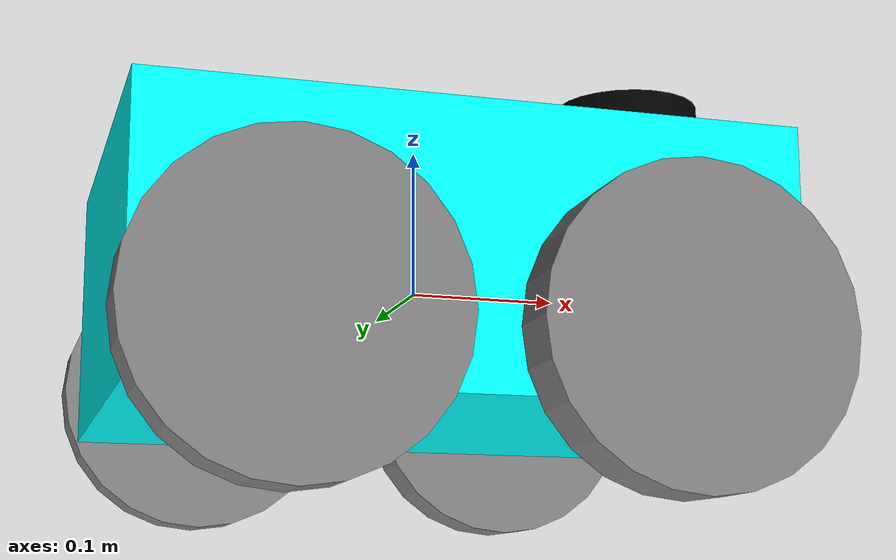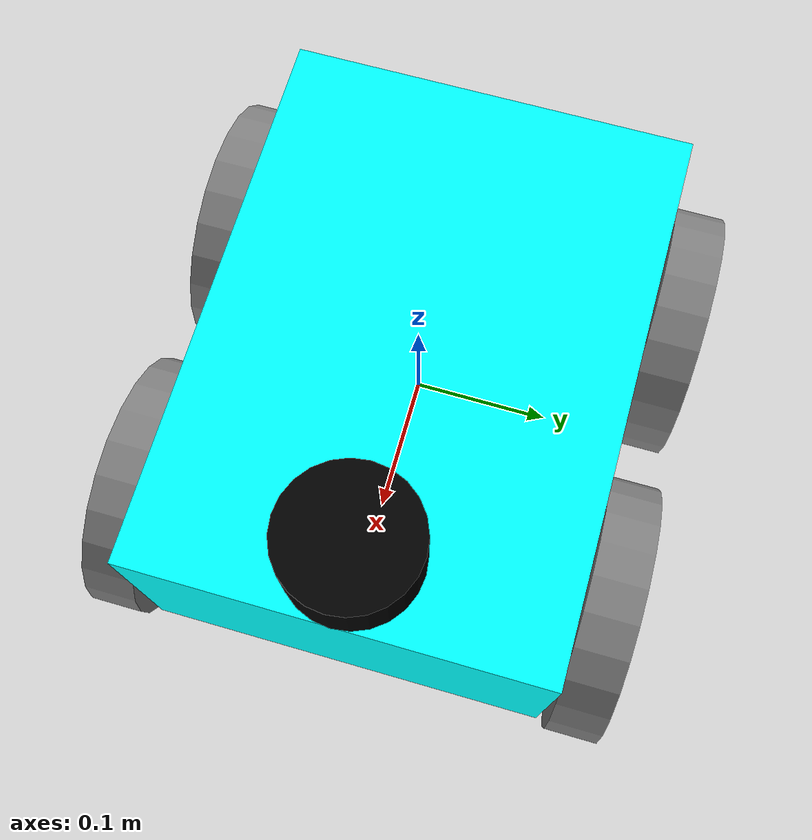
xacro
<?xml version="1.0"?>
<robot name="ws1_bot" xmlns:xacro="http://ros.org/wiki/xacro">

  <xacro:property name="base_width" value="0.31"/>
  <xacro:property name="base_length" value="0.42"/>
  <xacro:property name="base_height" value="0.18"/>

  <xacro:property name="wheel_radius" value="0.10"/>
  <xacro:property name="wheel_width" value="0.04"/>
  <xacro:property name="wheel_ygap" value="0.025"/>
  <xacro:property name="wheel_zoff" value="0.05"/>
  <xacro:property name="wheel_xoff" value="0.12"/>

  <xacro:macro name="box_inertia" params="m w h d">
    <inertial>
      <origin xyz="0 0 0" rpy="${pi/2} 0 ${pi/2}"/>
      <mass value="${m}"/>
      <inertia ixx="${(m/12) * (h*h + d*d)}" ixy="0.0" ixz="0.0" iyy="${(m/12) * (w*w + d*d)}" iyz="0.0" izz="${(m/12) * (w*w + h*h)}"/>
    </inertial>
  </xacro:macro>

  <xacro:macro name="cylinder_inertia" params="m r h">
    <inertial>
      <origin xyz="0 0 0" rpy="${pi/2} 0 0" />
      <mass value="${m}"/>
      <inertia ixx="${(m/12) * (3*r*r + h*h)}" ixy = "0" ixz = "0" iyy="${(m/12) * (3*r*r + h*h)}" iyz = "0" izz="${(m/2) * (r*r)}"/>
    </inertial>
  </xacro:macro>

  <link name="base_link">
    <visual>
      <geometry><box size="${base_length} ${base_width} ${base_height}"/></geometry>
      <material name="Cyan"><color rgba="0 1.0 1.0 1.0"/></material>
    </visual>
    <collision>
      <geometry><box size="${base_length} ${base_width} ${base_height}"/></geometry>
    </collision>
    <xacro:box_inertia m="15" w="${base_width}" d="${base_length}" h="${base_height}"/>
  </link>

  <link name="base_footprint"/>
  <joint name="base_joint" type="fixed">
    <parent link="base_link"/>
    <child link="base_footprint"/>
    <origin xyz="0.0 0.0 ${-(wheel_radius+wheel_zoff)}" rpy="0 0 0"/>
  </joint>

  <xacro:macro name="wheel" params="prefix x_reflect y_reflect">
    <link name="${prefix}_link">
      <visual>
        <origin xyz="0 0 0" rpy="${pi/2} 0 0"/>
        <geometry><cylinder radius="${wheel_radius}" length="${wheel_width}"/></geometry>
        <material name="Gray"><color rgba="0.5 0.5 0.5 1.0"/></material>
      </visual>
      <collision>
        <origin xyz="0 0 0" rpy="${pi/2} 0 0"/>
        <geometry><cylinder radius="${wheel_radius}" length="${wheel_width}"/></geometry>
      </collision>
      <xacro:cylinder_inertia m="0.5" r="${wheel_radius}" h="${wheel_width}"/>
    </link>

    <joint name="${prefix}_joint" type="continuous">
      <parent link="base_link"/>
      <child link="${prefix}_link"/>
      <origin xyz="${x_reflect*wheel_xoff} ${y_reflect*(base_width/2+wheel_ygap)} ${-wheel_zoff}" rpy="0 0 0"/>
      <axis xyz="0 1 0"/>
    </joint>
  </xacro:macro>

  <xacro:wheel prefix="front_left"  x_reflect="1"  y_reflect="1" />
  <xacro:wheel prefix="front_right" x_reflect="1"  y_reflect="-1" />
  <xacro:wheel prefix="rear_left"   x_reflect="-1" y_reflect="1" />
  <xacro:wheel prefix="rear_right"  x_reflect="-1" y_reflect="-1" />

  <link name="imu_link">
    <visual>
      <geometry><box size="0.05 0.05 0.02"/></geometry>
      <material name="Red"><color rgba="1 0 0 1"/></material>
    </visual>
    <xacro:box_inertia m="0.1" w="0.05" d="0.05" h="0.02"/>
  </link>
  <joint name="imu_joint" type="fixed">
    <parent link="base_link"/>
    <child link="imu_link"/>
    <origin xyz="0 0 0.01" rpy="0 0 0"/>
  </joint>

  <link name="lidar_link">
    <visual>
      <geometry><cylinder radius="0.0508" length="0.055"/></geometry>
      <material name="Black"><color rgba="0 0 0 1"/></material>
    </visual>
    <collision>
      <geometry><cylinder radius="0.0508" length="0.055"/></geometry>
    </collision>
    <inertial>
      <origin xyz="0 0 0" rpy="0 0 0"/><mass value="0.125"/>
      <inertia ixx="0.001" ixy="0" ixz="0" iyy="0.001" iyz="0" izz="0.001" />
    </inertial>
  </link>
  <joint name="lidar_joint" type="fixed">
    <parent link="base_link"/>
    <child link="lidar_link"/>
    <origin xyz="${base_length/2 - 0.05} 0 ${base_height/2 + 0.0275}" rpy="0 0 0"/>
  </joint>

  <gazebo>
    <plugin filename="gz-sim-diff-drive-system" name="gz::sim::systems::DiffDrive">
      <left_joint>front_left_joint</left_joint>
      <left_joint>rear_left_joint</left_joint>
      <right_joint>front_right_joint</right_joint>
      <right_joint>rear_right_joint</right_joint>
      <wheel_separation>${base_width + wheel_ygap*2}</wheel_separation>
      <wheel_radius>${wheel_radius}</wheel_radius>
      <topic>/cmd_vel</topic>
      <use_stamped_vel>false</use_stamped_vel>
      <odom_topic>/odom</odom_topic>
      <frame_id>odom</frame_id>
      <child_frame_id>base_link</child_frame_id>
    </plugin>

    <plugin filename="gz-sim-joint-state-publisher-system" name="gz::sim::systems::JointStatePublisher">
      <topic>/joint_states</topic>
    </plugin>
  </gazebo>

  <gazebo reference="imu_link">
    <sensor name="imu_sensor" type="imu">
      <always_on>1</always_on>
      <update_rate>100</update_rate>
      <visualize>true</visualize>
      <topic>imu</topic>
      <gz_frame_id>imu_link</gz_frame_id>
      <plugin filename="gz-sim-imu-system" name="gz::sim::systems::Imu"/>
    </sensor>
  </gazebo>

  <gazebo reference="lidar_link">
    <sensor name="gpu_lidar" type="gpu_lidar">
      <pose>0 0 0 0 0 0</pose>
      <update_rate>10</update_rate>
      <visualize>true</visualize>
      <topic>scan</topic>
      <gz_frame_id>lidar_link</gz_frame_id>
      <lidar>
        <scan>
          <horizontal>
            <samples>640</samples>
            <resolution>1</resolution>
            <min_angle>-3.14159</min_angle>
            <max_angle>3.14159</max_angle>
          </horizontal>
        </scan>
        <range>
          <min>0.1</min>
          <max>10.0</max>
          <resolution>0.01</resolution>
        </range>
      </lidar>
    </sensor>
  </gazebo>

</robot>
